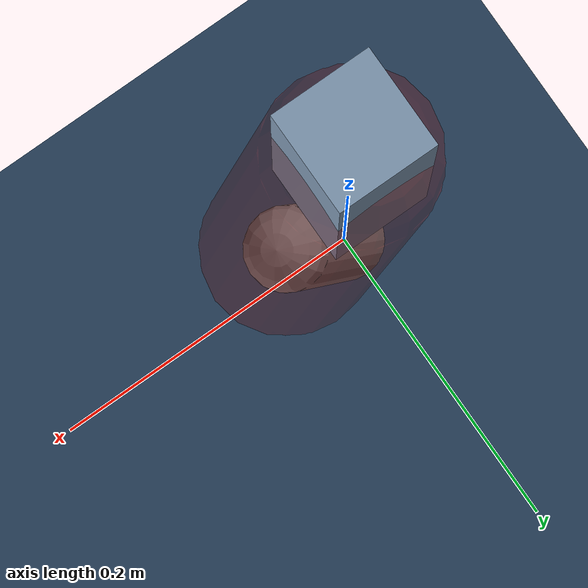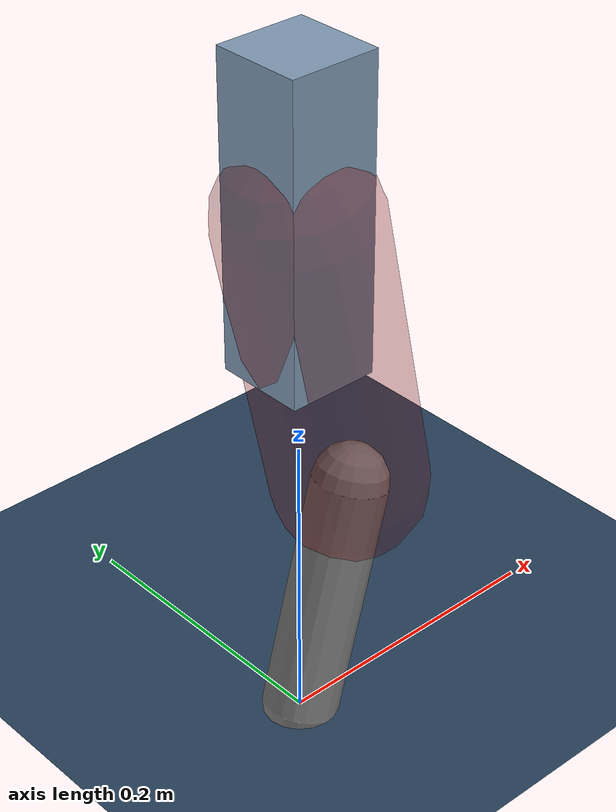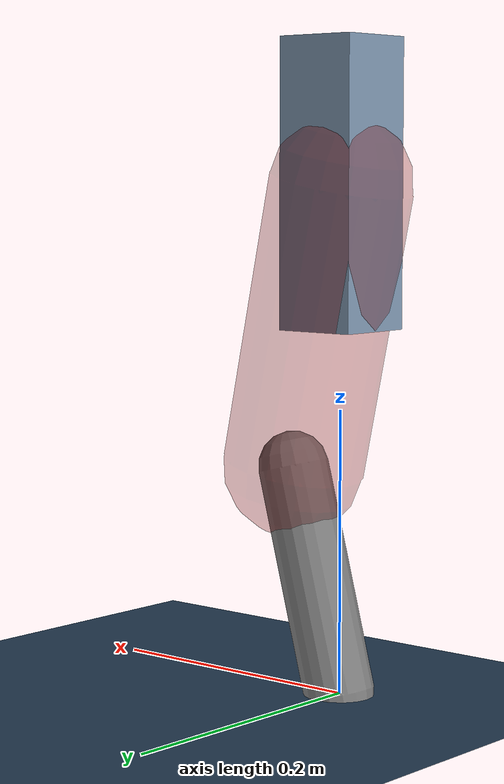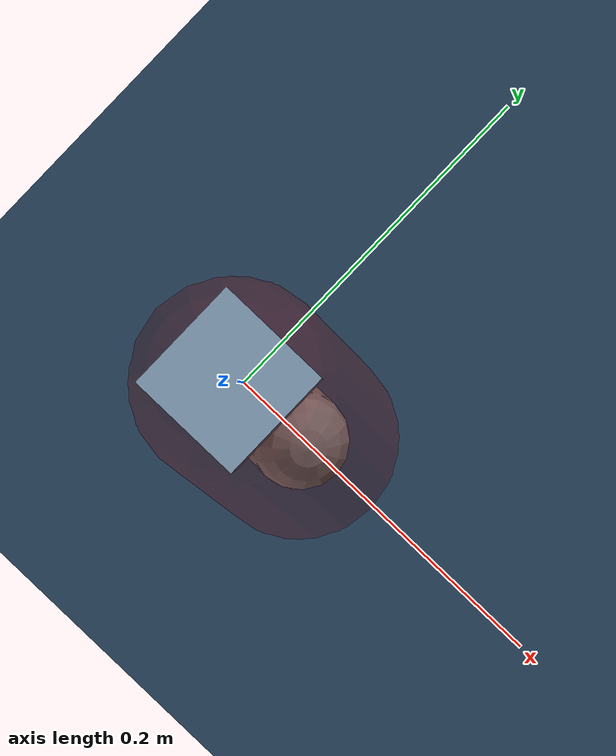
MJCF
<mujoco model="Hopper2D">
	<compiler inertiafromgeom="true" angle="radian" />
	<option timestep="0.001" integrator="implicit" cone="elliptic" solver="Newton" tolerance="1e-10" />

	<default>
		<geom contype="1" conaffinity="1" condim="3" friction="2 0.005 0.0001" solref="0.005 1" />
		<joint limited="true" damping="0.1" />
	</default>

	<asset>
		<texture name="skybox" type="skybox" builtin="gradient" rgb1=".4 .6 .8" rgb2="0 0 0" width="800" height="800" />
		<texture name="grid" type="2d" builtin="checker" rgb1=".1 .2 .3" rgb2=".2 .3 .4" width="300" height="300" mark="edge" markrgb=".2 .3 .4" />
		<material name="ground" texture="grid" texrepeat="1 1" texuniform="true" reflectance="0.1" />
		<material name="leg" rgba="0.5 0.6 0.7 1" />
	</asset>

	<worldbody>

		<geom name="floor" type="plane" size="5 5 0.25" material="ground" />

		<light directional="false" diffuse="0.8 0.8 0.8" specular="0.3 0.3 0.3" pos="0 0 2" dir="0 0 -1" />
		<light mode="targetbodycom" target="base" directional="false" diffuse="0.8 0.8 0.8" specular="0.3 0.3 0.3" pos="0 0 2" dir="0 0 -1" />

		<camera name="fixed" pos="0 -2 1" xyaxes="1 0 0 0 0 1" />
		<camera name="tracking" mode="trackcom" pos="0 -3 1" />

		<body name="root" pos="0 0 0.3559752951113808">
			<joint name="slide_x" type="slide" axis="1 0 0" range="-100 100" />
			<joint name="slide_z" type="slide" axis="0 0 1" range="0 10" />

			<body name="base" pos="0 0 0">
				<geom name="torso" type="box" size="0.03 0.03 0.1" mass="2.039" material="leg" />

				<body name="link1" pos="0 0 0" euler="0 1.3614200587688081 0">
					<joint type="hinge" axis="0 -1 0" pos="0 0 0" name="hinge1" limited="true" range="-3.14 3.14" stiffness="0" damping="0.1" />
					<geom name="thigh" type="capsule" fromto="0 0 0 0.20308908302730386 0 0" size="0.05" rgba="0.5 0 0 0.3" mass="0.7373227075682596" />

					<body name="link2" pos="0.20308908302730386 0 0" euler="0 0.4715187434202645 0">
						<joint type="hinge" axis="0 -1 0" pos="0 0 0" name="hinge2" limited="true" range="-3.14 3.14" stiffness="0" damping="0.1" />
						<geom name="shank" type="capsule" fromto="0 0 0 0.162886212084077 0 0" size="0.025" mass="0.3690975908756693" />

					</body>
				</body>
			</body>
		</body>
	</worldbody>

	<actuator>
		<motor name="torque1" joint="hinge1" ctrlrange="-27.742312590475443 27.742312590475443" ctrllimited="true" gear="1" />
		<motor name="torque2" joint="hinge2" ctrlrange="-40.835025650098316 40.835025650098316" ctrllimited="true" gear="1" />
	</actuator>
</mujoco>
